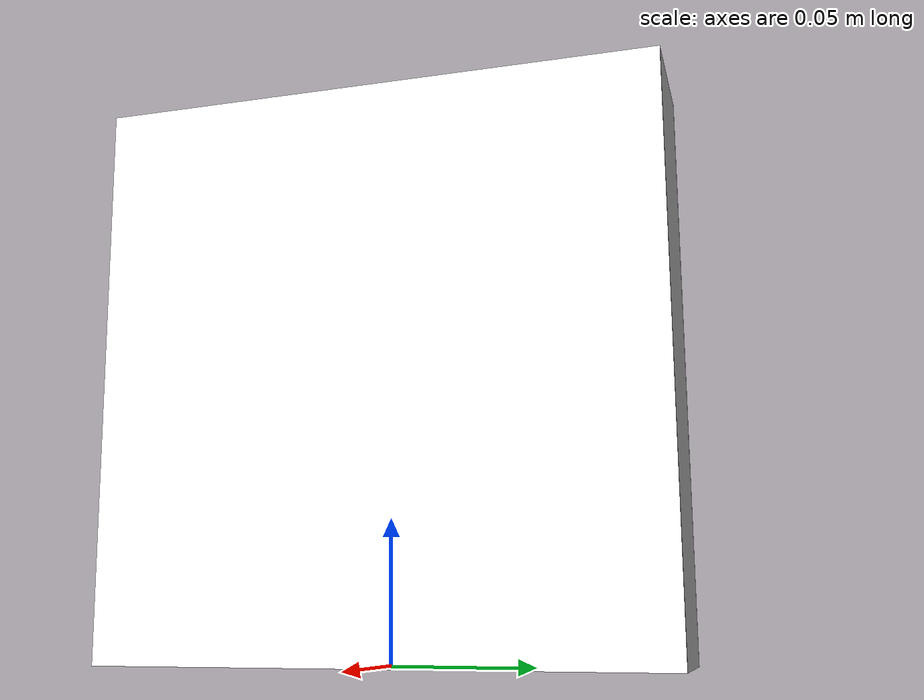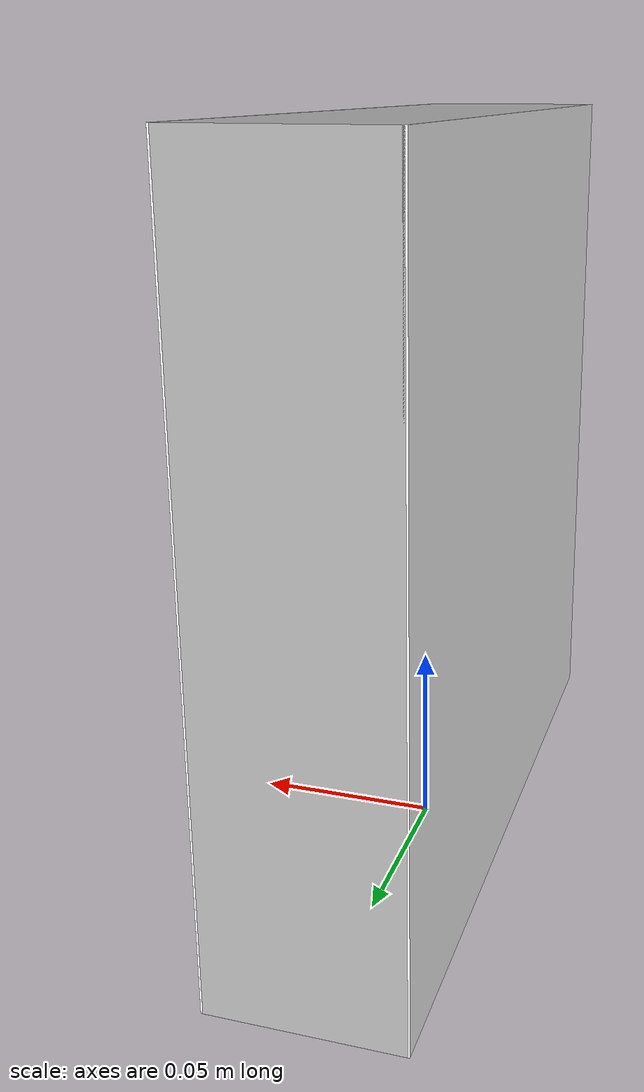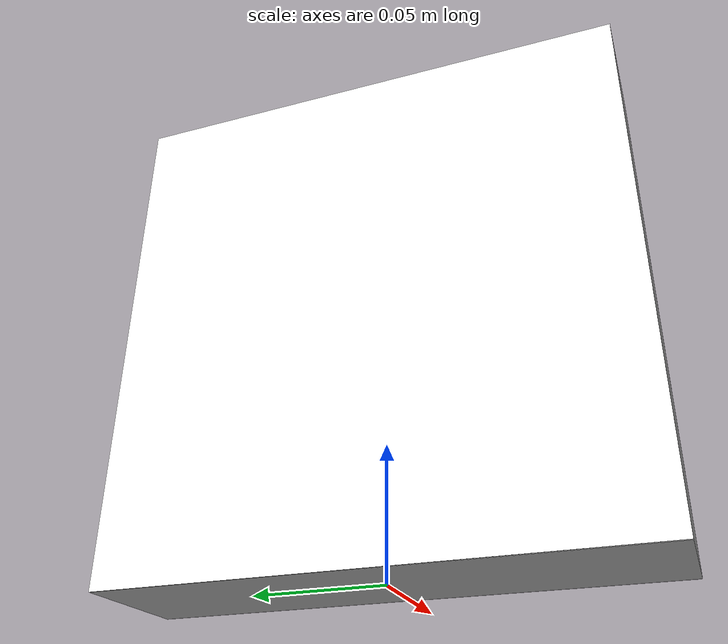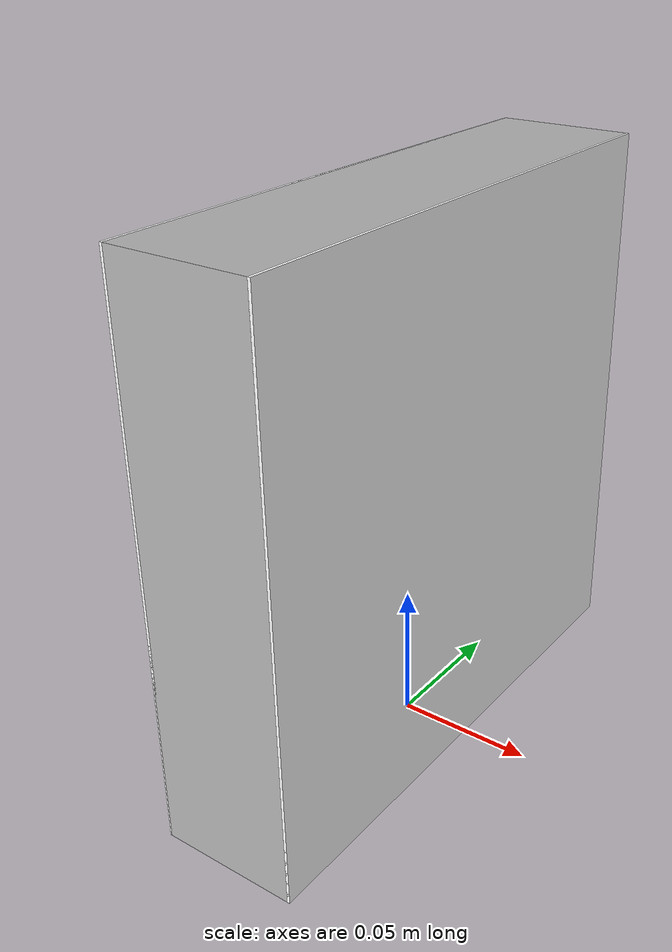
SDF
<?xml version="1.0"?>
<sdf version="1.9">
  <model name="apriltag_marker">

    <static>true</static> # Teleported by the mover

    <link name="link">
      <pose>0 0 0.1 0 0 0</pose>

      <inertial>
        <mass>2.0</mass>
        <inertia>
          <ixx>0.02</ixx>
          <iyy>0.07</iyy>
          <izz>0.07</izz>
        </inertia>
      </inertial>

      <collision name="collision">
        <geometry>
          <box>
            <size>0.05 0.2 0.2</size>
          </box>
        </geometry>
      </collision>

      <visual name="body">
        <geometry>
          <box>
            <size>0.05 0.2 0.2</size>
          </box>
        </geometry>
        <material>
          <ambient>0.7 0.7 0.7 1</ambient>
          <diffuse>0.7 0.7 0.7 1</diffuse>
          <specular>0 0 0 1</specular>
        </material>
      </visual>

      <visual name="front_face">
        <pose>0.025 0 0 0 0 0</pose>
        <geometry>
          <box>
            <size>0.001 0.2 0.2</size>
          </box>
        </geometry>
        <material>
          <ambient>1 1 1 1</ambient>
          <diffuse>1 1 1 1</diffuse>
          <specular>0 0 0 1</specular>
          <pbr>
            <metal>
              <albedo_map>model://apriltag_marker/materials/textures/tag36h11_00042.png</albedo_map>
              <metalness>0.0</metalness>
              <roughness>1.0</roughness>
            </metal>
          </pbr>
        </material>
      </visual>

      <visual name="back_face">
        <pose>-0.025 0 0 0 0 0</pose>
        <geometry>
          <box>
            <size>0.001 0.2 0.2</size>
          </box>
        </geometry>
        <material>
          <ambient>1 1 1 1</ambient>
          <diffuse>1 1 1 1</diffuse>
          <specular>0 0 0 1</specular>
          <pbr>
            <metal>
              <albedo_map>model://apriltag_marker/materials/textures/tag36h11_00042.png</albedo_map>
              <metalness>0.0</metalness>
              <roughness>1.0</roughness>
            </metal>
          </pbr>
        </material>
      </visual>

    </link>
  </model>
</sdf>
